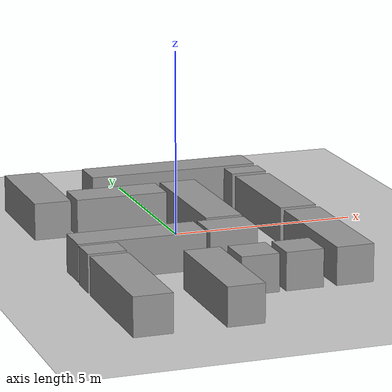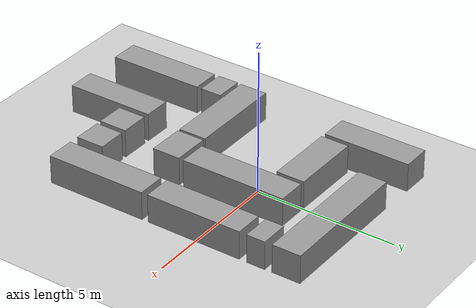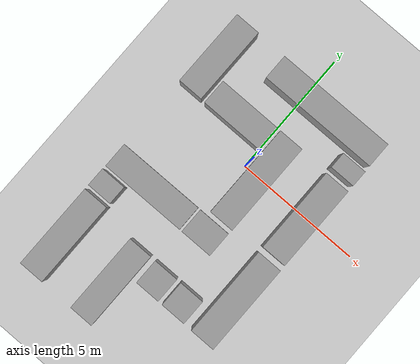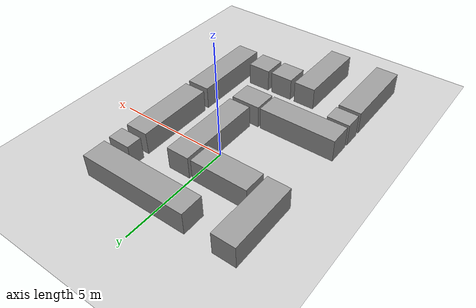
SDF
<sdf version="1.6">
 <world name="default">
  <light name="sun" type="directional">
   <pose>0 0 10 0 -0 0</pose>
   <diffuse>0.8 0.8 0.8 1</diffuse>
   <specular>0.1 0.1 0.1 1</specular>
   <attenuation>
    <range>1000</range>
    <constant>0.9</constant>
    <linear>0.01</linear>
    <quadratic>0.001</quadratic>
   </attenuation>
   <direction>-0.5 0.5 -1</direction>
  </light>
  <model name="ground_plane">
   <static>1</static>
   <link name="link">
    <collision name="collision">
     <geometry><plane><normal>0 0 1</normal><size>100 100</size></plane></geometry>
     <surface><friction><ode><mu>100</mu><mu2>50</mu2></ode></friction></surface>
    </collision>
    <visual name="visual">
     <cast_shadows>0</cast_shadows>
     <geometry><plane><normal>0 0 1</normal><size>100 100</size></plane></geometry>
     <material>
      <script><uri>file://media/materials/scripts/gazebo.material</uri><name>Gazebo/Grey</name></script>
     </material>
    </visual>
   </link>
  </model>
  <gravity>0 0 -1.62</gravity>
  <magnetic_field>6e-06 2.3e-05 -4.2e-05</magnetic_field>
  <atmosphere type="adiabatic"/>
  <physics name="default_physics" default="0" type="ode">
   <max_step_size>0.001</max_step_size>
   <real_time_factor>1</real_time_factor>
   <real_time_update_rate>1000</real_time_update_rate>
  </physics>
  <scene><ambient>0.4 0.4 0.4 1</ambient><background>0.7 0.7 0.7 1</background><shadows>1</shadows></scene>
  <spherical_coordinates>
   <surface_model>EARTH_WGS84</surface_model>
   <latitude_deg>0</latitude_deg>
   <longitude_deg>0</longitude_deg>
   <elevation>0</elevation>
   <heading_deg>0</heading_deg>
  </spherical_coordinates>
  <model name="unit_box_7">
   <pose>2.79552 2.19403 0.5 0 0 -1e-06</pose>
   <link name="link">
    <inertial>
     <mass>1</mass>
     <inertia>
      <ixx>0.166667</ixx>
      <ixy>0</ixy>
      <ixz>0</ixz>
      <iyy>0.166667</iyy>
      <iyz>0</iyz>
      <izz>0.166667</izz>
     </inertia>
    </inertial>
    <collision name="collision"><geometry><box><size>1 0.655237 1</size></box></geometry></collision>
    <visual name="visual">
     <geometry><box><size>1 0.655237 1</size></box></geometry>
     <material>
      <script><name>Gazebo/Grey</name><uri>file://media/materials/scripts/gazebo.material</uri></script>
     </material>
    </visual>
   </link>
  </model>
  <model name="unit_box_8_0_clone">
   <pose>-1.28277 1.18746 0.5 0 0 -1.57287</pose>
   <link name="link">
    <inertial>
     <mass>1</mass>
     <inertia>
      <ixx>0.166667</ixx>
      <ixy>0</ixy>
      <ixz>0</ixz>
      <iyy>0.166667</iyy>
      <iyz>0</iyz>
      <izz>0.166667</izz>
     </inertia>
    </inertial>
    <collision name="collision"><geometry><box><size>0.998557 2.50996 1</size></box></geometry></collision>
    <visual name="visual">
     <geometry><box><size>0.998557 2.50996 1</size></box></geometry>
     <material>
      <script><name>Gazebo/Grey</name><uri>file://media/materials/scripts/gazebo.material</uri></script>
     </material>
    </visual>
   </link>
  </model>
  <model name="unit_box_8_0_clone_0">
   <pose>2.80343 -3.81372 0.499986 -8e-06 0 0</pose>
   <link name="link">
    <inertial>
     <mass>1</mass>
     <inertia>
      <ixx>0.166667</ixx>
      <ixy>0</ixy>
      <ixz>0</ixz>
      <iyy>0.166667</iyy>
      <iyz>0</iyz>
      <izz>0.166667</izz>
     </inertia>
    </inertial>
    <collision name="collision"><geometry><box><size>1 3.58261 1</size></box></geometry></collision>
    <visual name="visual">
     <geometry><box><size>1 3.58261 1</size></box></geometry>
     <material>
      <script><name>Gazebo/Grey</name><uri>file://media/materials/scripts/gazebo.material</uri></script>
     </material>
    </visual>
   </link>
  </model>
  <model name="unit_box_8_0_clone_1">
   <pose>-1.99234 -2.73822 0.5 0 -1e-06 -1.56737</pose>
   <link name="link">
    <inertial>
     <mass>1</mass>
     <inertia>
      <ixx>0.166667</ixx>
      <ixy>0</ixy>
      <ixz>0</ixz>
      <iyy>0.166667</iyy>
      <iyz>0</iyz>
      <izz>0.166667</izz>
     </inertia>
    </inertial>
    <collision name="collision"><geometry><box><size>1 3.40701 1</size></box></geometry></collision>
    <visual name="visual">
     <geometry><box><size>1 3.40701 1</size></box></geometry>
     <material>
      <script><name>Gazebo/Grey</name><uri>file://media/materials/scripts/gazebo.material</uri></script>
     </material>
    </visual>
   </link>
  </model>
  <model name="unit_box_2_clone">
   <pose>0.454352 -2.73308 0.499999 2e-06 -0 0.002425</pose>
   <link name="link">
    <inertial>
     <mass>1</mass>
     <inertia>
      <ixx>0.166667</ixx>
      <ixy>0</ixy>
      <ixz>0</ixz>
      <iyy>0.166667</iyy>
      <iyz>0</iyz>
      <izz>0.166667</izz>
     </inertia>
    </inertial>
    <collision name="collision"><geometry><box><size>1.29208 0.999292 1</size></box></geometry></collision>
    <visual name="visual">
     <geometry><box><size>1.29208 0.999292 1</size></box></geometry>
     <material>
      <script><name>Gazebo/Grey</name><uri>file://media/materials/scripts/gazebo.material</uri></script>
     </material>
    </visual>
   </link>
  </model>
  <model name="unit_box_2_clone_0">
   <pose>0.280109 -5.09673 0.499999 2e-06 0 -1e-06</pose>
   <link name="link">
    <inertial>
     <mass>1</mass>
     <inertia>
      <ixx>0.166667</ixx>
      <ixy>0</ixy>
      <ixz>0</ixz>
      <iyy>0.166667</iyy>
      <iyz>0</iyz>
      <izz>0.166667</izz>
     </inertia>
    </inertial>
    <collision name="collision"><geometry><box><size>1 1 1</size></box></geometry></collision>
    <visual name="visual">
     <geometry><box><size>1 1 1</size></box></geometry>
     <material>
      <script><name>Gazebo/Grey</name><uri>file://media/materials/scripts/gazebo.material</uri></script>
     </material>
    </visual>
   </link>
  </model>
  <model name="unit_box_2_clone_1">
   <pose>-3.21051 -3.75946 0.499999 -0 -2e-06 1e-06</pose>
   <link name="link">
    <inertial>
     <mass>1</mass>
     <inertia>
      <ixx>0.166667</ixx>
      <ixy>0</ixy>
      <ixz>0</ixz>
      <iyy>0.166667</iyy>
      <iyz>0</iyz>
      <izz>0.166667</izz>
     </inertia>
    </inertial>
    <collision name="collision"><geometry><box><size>1 0.756541 1</size></box></geometry></collision>
    <visual name="visual">
     <geometry><box><size>1 0.756541 1</size></box></geometry>
     <material>
      <script><name>Gazebo/Grey</name><uri>file://media/materials/scripts/gazebo.material</uri></script>
     </material>
    </visual>
   </link>
  </model>
  <model name="unit_box_2_clone_2">
   <pose>1.45686 -5.09533 0.499999 2e-06 0 -1e-06</pose>
   <link name="link">
    <inertial>
     <mass>1</mass>
     <inertia>
      <ixx>0.166667</ixx>
      <ixy>0</ixy>
      <ixz>0</ixz>
      <iyy>0.166667</iyy>
      <iyz>0</iyz>
      <izz>0.166667</izz>
     </inertia>
    </inertial>
    <collision name="collision"><geometry><box><size>1 1 1</size></box></geometry></collision>
    <visual name="visual">
     <geometry><box><size>1 1 1</size></box></geometry>
     <material>
      <script><name>Gazebo/Grey</name><uri>file://media/materials/scripts/gazebo.material</uri></script>
     </material>
    </visual>
   </link>
  </model>
  <model name="unit_box_8_0_clone_1_clone">
   <pose>-3.21166 -6.01807 0.499995 3e-06 -0 0</pose>
   <link name="link">
    <inertial>
     <mass>1</mass>
     <inertia>
      <ixx>0.166667</ixx>
      <ixy>0</ixy>
      <ixz>0</ixz>
      <iyy>0.166667</iyy>
      <iyz>0</iyz>
      <izz>0.166667</izz>
     </inertia>
    </inertial>
    <collision name="collision"><geometry><box><size>1 3.40701 1</size></box></geometry></collision>
    <visual name="visual">
     <geometry><box><size>1 3.40701 1</size></box></geometry>
     <material>
      <script><name>Gazebo/Grey</name><uri>file://media/materials/scripts/gazebo.material</uri></script>
     </material>
    </visual>
   </link>
  </model>
  <model name="unit_box_8_0_clone_1_clone_0">
   <pose>-0.901152 -6.16493 0.499995 3e-06 -0 0</pose>
   <link name="link">
    <inertial>
     <mass>1</mass>
     <inertia>
      <ixx>0.166667</ixx>
      <ixy>0</ixy>
      <ixz>0</ixz>
      <iyy>0.166667</iyy>
      <iyz>0</iyz>
      <izz>0.166667</izz>
     </inertia>
    </inertial>
    <collision name="collision"><geometry><box><size>0.958553 3.14374 1</size></box></geometry></collision>
    <visual name="visual">
     <geometry><box><size>0.958553 3.14374 1</size></box></geometry>
     <material>
      <script><name>Gazebo/Grey</name><uri>file://media/materials/scripts/gazebo.material</uri></script>
     </material>
    </visual>
   </link>
  </model>
  <model name="unit_box_8_0_clone_clone">
   <pose>0.618623 -0.190982 0.499962 2e-05 -0 0</pose>
   <link name="link">
    <inertial>
     <mass>1</mass>
     <inertia>
      <ixx>0.166667</ixx>
      <ixy>0</ixy>
      <ixz>0</ixz>
      <iyy>0.166667</iyy>
      <iyz>0</iyz>
      <izz>0.166667</izz>
     </inertia>
    </inertial>
    <collision name="collision"><geometry><box><size>1 3.74342 0.999997</size></box></geometry></collision>
    <visual name="visual">
     <geometry><box><size>1 3.74342 0.999997</size></box></geometry>
     <material>
      <script><name>Gazebo/Grey</name><uri>file://media/materials/scripts/gazebo.material</uri></script>
     </material>
    </visual>
   </link>
  </model>
  <model name="unit_box_8_0_clone_clone_0">
   <pose>2.79565 -0.095497 0.499995 -3e-06 0 0</pose>
   <link name="link">
    <inertial>
     <mass>1</mass>
     <inertia>
      <ixx>0.166667</ixx>
      <ixy>0</ixy>
      <ixz>0</ixz>
      <iyy>0.166667</iyy>
      <iyz>0</iyz>
      <izz>0.166667</izz>
     </inertia>
    </inertial>
    <collision name="collision"><geometry><box><size>0.999995 3.40701 1</size></box></geometry></collision>
    <visual name="visual">
     <geometry><box><size>0.999995 3.40701 1</size></box></geometry>
     <material>
      <script><name>Gazebo/Grey</name><uri>file://media/materials/scripts/gazebo.material</uri></script>
     </material>
    </visual>
   </link>
  </model>
  <model name="unit_box_8_0_clone_clone_1">
   <pose>0.900619 3.26688 0.49986 -5.7e-05 -0 -1.56903</pose>
   <link name="link">
    <inertial>
     <mass>1</mass>
     <inertia>
      <ixx>0.166667</ixx>
      <ixy>0</ixy>
      <ixz>0</ixz>
      <iyy>0.166667</iyy>
      <iyz>0</iyz>
      <izz>0.166667</izz>
     </inertia>
    </inertial>
    <collision name="collision"><geometry><box><size>0.999234 4.7586 0.999981</size></box></geometry></collision>
    <visual name="visual">
     <geometry><box><size>0.999234 4.7586 0.999981</size></box></geometry>
     <material>
      <script><name>Gazebo/Grey</name><uri>file://media/materials/scripts/gazebo.material</uri></script>
     </material>
    </visual>
   </link>
  </model>
  <model name="unit_box_8_0_clone_clone_2">
   <pose>-3.20593 2.24939 0.499999 0 1e-06 -0.001606</pose>
   <link name="link">
    <inertial>
     <mass>1</mass>
     <inertia>
      <ixx>0.166667</ixx>
      <ixy>0</ixy>
      <ixz>0</ixz>
      <iyy>0.166667</iyy>
      <iyz>0</iyz>
      <izz>0.166667</izz>
     </inertia>
    </inertial>
    <collision name="collision"><geometry><box><size>1 3.08753 1</size></box></geometry></collision>
    <visual name="visual">
     <geometry><box><size>1 3.08753 1</size></box></geometry>
     <material>
      <script><name>Gazebo/Grey</name><uri>file://media/materials/scripts/gazebo.material</uri></script>
     </material>
    </visual>
   </link>
  </model>
 </world>
</sdf>
